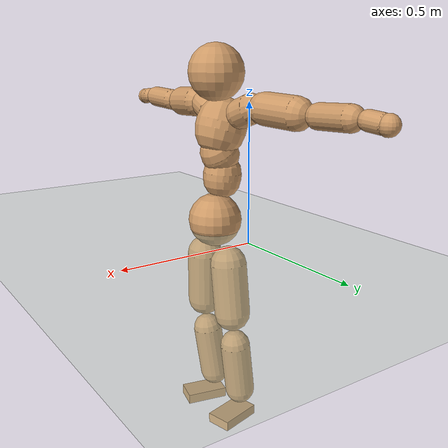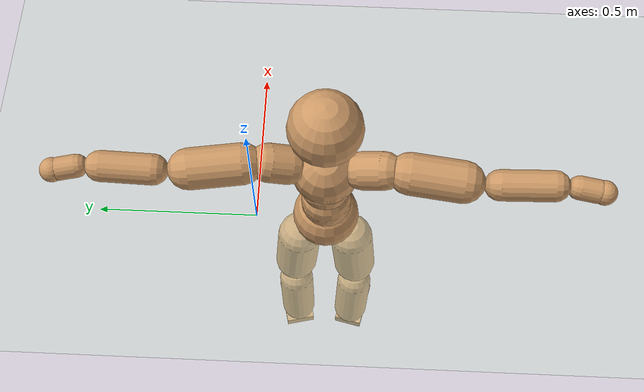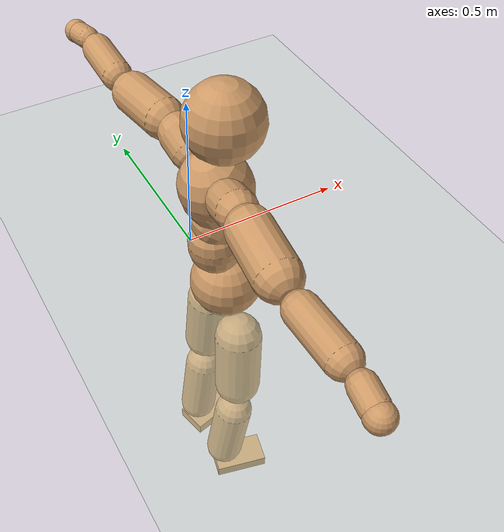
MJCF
<mujoco model="humanoid">
  <compiler coordinate="local"/>
  <default>
    <joint damping="0.0" armature="0.01" stiffness="0.0" limited="true"/>
    <geom conaffinity="1" condim="3" contype="7" margin="0.001" rgba="0.8 0.6 .4 1"/>
  </default>
  <asset>
    <texture type="skybox" builtin="gradient" rgb1=".4 .5 .6" rgb2="0 0 0" width="100" height="100"/>
    <texture builtin="flat" height="1278" mark="cross" markrgb="1 1 1" name="texgeom" random="0.01" rgb1="0.8 0.6 0.4" rgb2="0.8 0.6 0.4" type="cube" width="127"/>
    <texture builtin="checker" height="100" name="texplane" rgb1="0 0 0" rgb2="0.8 0.8 0.8" type="2d" width="100"/>
    <material name="MatPlane" reflectance="0.5" shininess="1" specular="1" texrepeat="60 60" texture="texplane"/>
    <material name="geom" texture="texgeom" texuniform="true"/>
  </asset>
  <worldbody>
    <light cutoff="100" diffuse="1 1 1" dir="-0 0 -1.3" directional="true" exponent="1" pos="0 0 1.3" specular=".1 .1 .1"/>
    <geom conaffinity="1" condim="3" name="floor" pos="0 0 0" rgba="0.8 0.9 0.8 1" size="100 100 .2" type="plane" material="MatPlane"/>
    <body name="Pelvis" pos="0.0003 -0.2207 0.0397">
      <freejoint name="Pelvis"/>
      <geom type="sphere" contype="1" conaffinity="1" density="500" size="0.1030" pos="0.0000 0.0000 0.0000" name="Pelvis"/>
      <body name="L_Hip" pos="-0.0016 0.0805 -0.0906">
        <joint name="L_Hip_x" type="hinge" pos="0 0 0" axis="1 0 0" stiffness="800" damping="80" armature="0.02" range="-180.0000 180.0000"/>
        <joint name="L_Hip_y" type="hinge" pos="0 0 0" axis="0 1 0" stiffness="800" damping="80" armature="0.02" range="-180.0000 180.0000"/>
        <joint name="L_Hip_z" type="hinge" pos="0 0 0" axis="0 0 1" stiffness="800" damping="80" armature="0.02" range="-180.0000 180.0000"/>
        <geom type="capsule" contype="1" conaffinity="1" density="500" fromto="-0.0024 0.0048 -0.0683 -0.0095 0.0194 -0.2732" size="0.0698" name="L_Hip"/>
        <body name="L_Knee" pos="-0.0119 0.0242 -0.3415">
          <joint name="L_Knee_x" type="hinge" pos="0 0 0" axis="1 0 0" stiffness="800" damping="80" armature="0.02" range="-180.0000 180.0000"/>
          <joint name="L_Knee_y" type="hinge" pos="0 0 0" axis="0 1 0" stiffness="800" damping="80" armature="0.02" range="-180.0000 180.0000"/>
          <joint name="L_Knee_z" type="hinge" pos="0 0 0" axis="0 0 1" stiffness="800" damping="80" armature="0.02" range="-180.0000 180.0000"/>
          <geom type="capsule" contype="1" conaffinity="1" density="500" fromto="-0.0093 -0.0020 -0.0713 -0.0374 -0.0080 -0.2853" size="0.0587" name="L_Knee"/>
          <body name="L_Ankle" pos="-0.0467 -0.0099 -0.3567">
            <joint name="L_Ankle_x" type="hinge" pos="0 0 0" axis="1 0 0" stiffness="800" damping="80" armature="0.02" range="-180.0000 180.0000"/>
            <joint name="L_Ankle_y" type="hinge" pos="0 0 0" axis="0 1 0" stiffness="800" damping="80" armature="0.02" range="-180.0000 180.0000"/>
            <joint name="L_Ankle_z" type="hinge" pos="0 0 0" axis="0 0 1" stiffness="800" damping="80" armature="0.02" range="-180.0000 180.0000"/>
            <geom type="box" contype="1" conaffinity="1" density="500" pos="0.0568 0.0136 -0.0263" size="0.0842 0.0505 0.0195" quat="0.9931 0.0000 0.0000 0.1175" name="L_Ankle"/>
            <body name="L_Toe" pos="0.1136 0.0273 -0.0527">
              <joint name="L_Toe_x" type="hinge" pos="0 0 0" axis="1 0 0" stiffness="500" damping="50" armature="0.02" range="-180.0000 180.0000"/>
              <joint name="L_Toe_y" type="hinge" pos="0 0 0" axis="0 1 0" stiffness="500" damping="50" armature="0.02" range="-180.0000 180.0000"/>
              <joint name="L_Toe_z" type="hinge" pos="0 0 0" axis="0 0 1" stiffness="500" damping="50" armature="0.02" range="-180.0000 180.0000"/>
              <geom type="box" contype="1" conaffinity="1" density="500" pos="0.0000 0.0000 0.0269" size="0.001 0.0025 0.001" quat="0.9923 0.0000 0.0000 0.1236" name="L_Toe"/>
            </body>
          </body>
        </body>
      </body>
      <body name="R_Hip" pos="0 -0.078 -0.0899">
        <joint name="R_Hip_x" type="hinge" pos="0 0 0" axis="1 0 0" stiffness="800" damping="80" armature="0.02" range="-180.0000 180.0000"/>
        <joint name="R_Hip_y" type="hinge" pos="0 0 0" axis="0 1 0" stiffness="800" damping="80" armature="0.02" range="-180.0000 180.0000"/>
        <joint name="R_Hip_z" type="hinge" pos="0 0 0" axis="0 0 1" stiffness="800" damping="80" armature="0.02" range="-180.0000 180.0000"/>
        <geom type="capsule" contype="1" conaffinity="1" density="500" fromto="-0.0029 -0.0059 -0.0694 -0.0116 -0.0235 -0.2775" size="0.0692" name="R_Hip"/>
        <body name="R_Knee" pos="-0.0144 -0.0294 -0.3468">
          <joint name="R_Knee_x" type="hinge" pos="0 0 0" axis="1 0 0" stiffness="800" damping="80" armature="0.02" range="-180.0000 180.0000"/>
          <joint name="R_Knee_y" type="hinge" pos="0 0 0" axis="0 1 0" stiffness="800" damping="80" armature="0.02" range="-180.0000 180.0000"/>
          <joint name="R_Knee_z" type="hinge" pos="0 0 0" axis="0 0 1" stiffness="800" damping="80" armature="0.02" range="-180.0000 180.0000"/>
          <geom type="capsule" contype="1" conaffinity="1" density="500" fromto="-0.0094 0.0023 -0.0715 -0.0375 0.0091 -0.2859" size="0.0587" name="R_Knee"/>
          <body name="R_Ankle" pos="-0.0468 0.0113 -0.3574">
            <joint name="R_Ankle_x" type="hinge" pos="0 0 0" axis="1 0 0" stiffness="800" damping="80" armature="0.02" range="-180.0000 180.0000"/>
            <joint name="R_Ankle_y" type="hinge" pos="0 0 0" axis="0 1 0" stiffness="800" damping="80" armature="0.02" range="-180.0000 180.0000"/>
            <joint name="R_Ankle_z" type="hinge" pos="0 0 0" axis="0 0 1" stiffness="800" damping="80" armature="0.02" range="-180.0000 180.0000"/>
            <geom type="box" contype="1" conaffinity="1" density="500" pos="0.0588 -0.0136 -0.0221" size="0.0833 0.0485 0.0201" quat="0.9935 0.0000 0.0000 -0.1135" name="R_Ankle"/>
            <body name="R_Toe" pos="0.1177 -0.0272 -0.0442">
              <joint name="R_Toe_x" type="hinge" pos="0 0 0" axis="1 0 0" stiffness="500" damping="50" armature="0.02" range="-180.0000 180.0000"/>
              <joint name="R_Toe_y" type="hinge" pos="0 0 0" axis="0 1 0" stiffness="500" damping="50" armature="0.02" range="-180.0000 180.0000"/>
              <joint name="R_Toe_z" type="hinge" pos="0 0 0" axis="0 0 1" stiffness="500" damping="50" armature="0.02" range="-180.0000 180.0000"/>
              <geom type="box" contype="1" conaffinity="1" density="500" pos="0.0000 0.0000 0.0243" size="0.0009 0.0024 0.0011" quat="0.9946 0.0000 0.0000 -0.1038" name="R_Toe"/>
            </body>
          </body>
        </body>
      </body>
      <body name="Torso" pos="-0.0319 -0.0029 0.1052">
        <joint name="Torso_x" type="hinge" pos="0 0 0" axis="1 0 0" stiffness="1000" damping="100" armature="0.02" range="-180.0000 180.0000"/>
        <joint name="Torso_y" type="hinge" pos="0 0 0" axis="0 1 0" stiffness="1000" damping="100" armature="0.02" range="-180.0000 180.0000"/>
        <joint name="Torso_z" type="hinge" pos="0 0 0" axis="0 0 1" stiffness="1000" damping="100" armature="0.02" range="-180.0000 180.0000"/>
        <geom type="capsule" contype="1" conaffinity="1" density="500" fromto="-0.0046 0.0020 0.0748 -0.0031 0.0013 0.0499" size="0.073656" name="Torso"/>
        <body name="Spine" pos="-0.0077 0.0034 0.1247">
          <joint name="Spine_x" type="hinge" pos="0 0 0" axis="1 0 0" stiffness="1000" damping="100" armature="0.02" range="-180.0000 180.0000"/>
          <joint name="Spine_y" type="hinge" pos="0 0 0" axis="0 1 0" stiffness="1000" damping="100" armature="0.02" range="-180.0000 180.0000"/>
          <joint name="Spine_z" type="hinge" pos="0 0 0" axis="0 0 1" stiffness="1000" damping="100" armature="0.02" range="-180.0000 180.0000"/>
          <geom type="capsule" contype="1" conaffinity="1" density="500" fromto="0.0195 0.0010 0.0299 0.0130 0.0007 0.0199" size="0.073191" name="Spine"/>
          <body name="Chest" pos="0.0326 0.0017 0.0498">
            <joint name="Chest_x" type="hinge" pos="0 0 0" axis="1 0 0" stiffness="1000" damping="100" armature="0.02" range="-180.0000 180.0000"/>
            <joint name="Chest_y" type="hinge" pos="0 0 0" axis="0 1 0" stiffness="1000" damping="100" armature="0.02" range="-180.0000 180.0000"/>
            <joint name="Chest_z" type="hinge" pos="0 0 0" axis="0 0 1" stiffness="1000" damping="100" armature="0.02" range="-180.0000 180.0000"/>
            <geom type="capsule" contype="1" conaffinity="1" density="500" fromto="-0.0276 -0.0001 0.0908 -0.0184 -0.0001 0.0605" size="0.096441" name="Chest"/>
            <body name="Neck" pos="-0.0532 0.0006 0.2123">
              <joint name="Neck_x" type="hinge" pos="0 0 0" axis="1 0 0" stiffness="500" damping="50" armature="0.02" range="-180.0000 180.0000"/>
              <joint name="Neck_y" type="hinge" pos="0 0 0" axis="0 1 0" stiffness="500" damping="50" armature="0.02" range="-180.0000 180.0000"/>
              <joint name="Neck_z" type="hinge" pos="0 0 0" axis="0 0 1" stiffness="500" damping="50" armature="0.02" range="-180.0000 180.0000"/>
              <geom type="capsule" contype="1" conaffinity="1" density="500" fromto="0.0101 0.0002 0.0117 0.0405 0.0009 0.0469" size="0.040362" name="Neck"/>
              <body name="Head" pos="0.0507 0.0012 0.0586">
                <joint name="Head_x" type="hinge" pos="0 0 0" axis="1 0 0" stiffness="500" damping="50" armature="0.02" range="-180.0000 180.0000"/>
                <joint name="Head_y" type="hinge" pos="0 0 0" axis="0 1 0" stiffness="500" damping="50" armature="0.02" range="-180.0000 180.0000"/>
                <joint name="Head_z" type="hinge" pos="0 0 0" axis="0 0 1" stiffness="500" damping="50" armature="0.02" range="-180.0000 180.0000"/>
                <geom type="sphere" contype="1" conaffinity="1" density="500" size="0.1042" pos="0.0000 0.0000 0.0000" name="Head"/>
              </body>
            </body>
            <body name="L_Thorax" pos="-0.0388 0.0816 0.1224">
              <joint name="L_Thorax_x" type="hinge" pos="0 0 0" axis="1 0 0" stiffness="500" damping="50" armature="0.02" range="-180.0000 180.0000"/>
              <joint name="L_Thorax_y" type="hinge" pos="0 0 0" axis="0 1 0" stiffness="500" damping="50" armature="0.02" range="-180.0000 180.0000"/>
              <joint name="L_Thorax_z" type="hinge" pos="0 0 0" axis="0 0 1" stiffness="500" damping="50" armature="0.02" range="-180.0000 180.0000"/>
              <geom type="capsule" contype="1" conaffinity="1" density="500" fromto="-0.0021 0.0185 0.0068 -0.0084 0.0741 0.0273" size="0.0548" name="L_Thorax"/>
              <body name="L_Shoulder" pos="-0.0106 0.0926 0.0341">
                <joint name="L_Shoulder_x" type="hinge" pos="0 0 0" axis="1 0 0" stiffness="500" damping="50" armature="0.02" range="-720.0000 720.0000"/>
                <joint name="L_Shoulder_y" type="hinge" pos="0 0 0" axis="0 1 0" stiffness="500" damping="50" armature="0.02" range="-720.0000 720.0000"/>
                <joint name="L_Shoulder_z" type="hinge" pos="0 0 0" axis="0 0 1" stiffness="500" damping="50" armature="0.02" range="-720.0000 720.0000"/>
                <geom type="capsule" contype="1" conaffinity="1" density="500" fromto="-0.0064 0.0489 -0.0023 -0.0255 0.1957 -0.0091" size="0.0581" name="L_Shoulder"/>
                <body name="L_Elbow" pos="-0.0318 0.2446 -0.0114">
                  <joint name="L_Elbow_x" type="hinge" pos="0 0 0" axis="1 0 0" stiffness="500" damping="50" armature="0.02" range="-720.0000 720.0000"/>
                  <joint name="L_Elbow_y" type="hinge" pos="0 0 0" axis="0 1 0" stiffness="500" damping="50" armature="0.02" range="-720.0000 720.0000"/>
                  <joint name="L_Elbow_z" type="hinge" pos="0 0 0" axis="0 0 1" stiffness="500" damping="50" armature="0.02" range="-720.0000 720.0000"/>
                  <geom type="capsule" contype="1" conaffinity="1" density="500" fromto="0.0006 0.0474 0.0018 0.0024 0.1896 0.0072" size="0.0436" name="L_Elbow"/>
                  <body name="L_Wrist" pos="0.0031 0.237 0.009">
                    <joint name="L_Wrist_x" type="hinge" pos="0 0 0" axis="1 0 0" stiffness="300" damping="30" armature="0.02" range="-180.0000 180.0000"/>
                    <joint name="L_Wrist_y" type="hinge" pos="0 0 0" axis="0 1 0" stiffness="300" damping="30" armature="0.02" range="-180.0000 180.0000"/>
                    <joint name="L_Wrist_z" type="hinge" pos="0 0 0" axis="0 0 1" stiffness="300" damping="30" armature="0.02" range="-180.0000 180.0000"/>
                    <geom type="capsule" contype="1" conaffinity="1" density="500" fromto="-0.0027 0.0169 -0.0020 -0.0110 0.0677 -0.0081" size="0.0325" name="L_Wrist"/>
                    <body name="L_Hand" pos="-0.0137 0.0847 -0.0102">
                      <joint name="L_Hand_x" type="hinge" pos="0 0 0" axis="1 0 0" stiffness="300" damping="30" armature="0.02" range="-180.0000 180.0000"/>
                      <joint name="L_Hand_y" type="hinge" pos="0 0 0" axis="0 1 0" stiffness="300" damping="30" armature="0.02" range="-180.0000 180.0000"/>
                      <joint name="L_Hand_z" type="hinge" pos="0 0 0" axis="0 0 1" stiffness="300" damping="30" armature="0.02" range="-180.0000 180.0000"/>
                      <geom type="sphere" contype="1" conaffinity="1" density="500" size="0.0343" pos="0.0000 0.0000 0.0000" name="L_Hand"/>
                    </body>
                  </body>
                </body>
              </body>
            </body>
            <body name="R_Thorax" pos="-0.0458 -0.0826 0.1194">
              <joint name="R_Thorax_x" type="hinge" pos="0 0 0" axis="1 0 0" stiffness="500" damping="50" armature="0.02" range="-180.0000 180.0000"/>
              <joint name="R_Thorax_y" type="hinge" pos="0 0 0" axis="0 1 0" stiffness="500" damping="50" armature="0.02" range="-180.0000 180.0000"/>
              <joint name="R_Thorax_z" type="hinge" pos="0 0 0" axis="0 0 1" stiffness="500" damping="50" armature="0.02" range="-180.0000 180.0000"/>
              <geom type="capsule" contype="1" conaffinity="1" density="500" fromto="-0.0027 -0.0196 0.0067 -0.0108 -0.0785 0.0269" size="0.0538" name="R_Thorax"/>
              <body name="R_Shoulder" pos="-0.0135 -0.0981 0.0336">
                <joint name="R_Shoulder_x" type="hinge" pos="0 0 0" axis="1 0 0" stiffness="500" damping="50" armature="0.02" range="-720.0000 720.0000"/>
                <joint name="R_Shoulder_y" type="hinge" pos="0 0 0" axis="0 1 0" stiffness="500" damping="50" armature="0.02" range="-720.0000 720.0000"/>
                <joint name="R_Shoulder_z" type="hinge" pos="0 0 0" axis="0 0 1" stiffness="500" damping="50" armature="0.02" range="-720.0000 720.0000"/>
                <geom type="capsule" contype="1" conaffinity="1" density="500" fromto="-0.0051 -0.0489 -0.0024 -0.0202 -0.1957 -0.0097" size="0.059" name="R_Shoulder"/>
                <body name="R_Elbow" pos="-0.0253 -0.2446 -0.0121">
                  <joint name="R_Elbow_x" type="hinge" pos="0 0 0" axis="1 0 0" stiffness="500" damping="50" armature="0.02" range="-720.0000 720.0000"/>
                  <joint name="R_Elbow_y" type="hinge" pos="0 0 0" axis="0 1 0" stiffness="500" damping="50" armature="0.02" range="-720.0000 720.0000"/>
                  <joint name="R_Elbow_z" type="hinge" pos="0 0 0" axis="0 0 1" stiffness="500" damping="50" armature="0.02" range="-720.0000 720.0000"/>
                  <geom type="capsule" contype="1" conaffinity="1" density="500" fromto="0.0002 -0.0485 0.0019 0.0009 -0.1940 0.0078" size="0.0436" name="R_Elbow"/>
                  <body name="R_Wrist" pos="0.0011 -0.2425 0.0097">
                    <joint name="R_Wrist_x" type="hinge" pos="0 0 0" axis="1 0 0" stiffness="300" damping="30" armature="0.02" range="-180.0000 180.0000"/>
                    <joint name="R_Wrist_y" type="hinge" pos="0 0 0" axis="0 1 0" stiffness="300" damping="30" armature="0.02" range="-180.0000 180.0000"/>
                    <joint name="R_Wrist_z" type="hinge" pos="0 0 0" axis="0 0 1" stiffness="300" damping="30" armature="0.02" range="-180.0000 180.0000"/>
                    <geom type="capsule" contype="1" conaffinity="1" density="500" fromto="-0.0022 -0.0171 -0.0015 -0.0090 -0.0682 -0.0062" size="0.0332" name="R_Wrist"/>
                    <body name="R_Hand" pos="-0.0112 -0.0853 -0.0077">
                      <joint name="R_Hand_x" type="hinge" pos="0 0 0" axis="1 0 0" stiffness="300" damping="30" armature="0.02" range="-180.0000 180.0000"/>
                      <joint name="R_Hand_y" type="hinge" pos="0 0 0" axis="0 1 0" stiffness="300" damping="30" armature="0.02" range="-180.0000 180.0000"/>
                      <joint name="R_Hand_z" type="hinge" pos="0 0 0" axis="0 0 1" stiffness="300" damping="30" armature="0.02" range="-180.0000 180.0000"/>
                      <geom type="sphere" contype="1" conaffinity="1" density="500" size="0.0345" pos="0.0000 0.0000 0.0000" name="R_Hand"/>
                    </body>
                  </body>
                </body>
              </body>
            </body>
          </body>
        </body>
      </body>
    </body>
  </worldbody>
  <actuator>
    <motor name="L_Hip_x" joint="L_Hip_x" gear="500"/>
    <motor name="L_Hip_y" joint="L_Hip_y" gear="500"/>
    <motor name="L_Hip_z" joint="L_Hip_z" gear="500"/>
    <motor name="L_Knee_x" joint="L_Knee_x" gear="500"/>
    <motor name="L_Knee_y" joint="L_Knee_y" gear="500"/>
    <motor name="L_Knee_z" joint="L_Knee_z" gear="500"/>
    <motor name="L_Ankle_x" joint="L_Ankle_x" gear="500"/>
    <motor name="L_Ankle_y" joint="L_Ankle_y" gear="500"/>
    <motor name="L_Ankle_z" joint="L_Ankle_z" gear="500"/>
    <motor name="L_Toe_x" joint="L_Toe_x" gear="500"/>
    <motor name="L_Toe_y" joint="L_Toe_y" gear="500"/>
    <motor name="L_Toe_z" joint="L_Toe_z" gear="500"/>
    <motor name="R_Hip_x" joint="R_Hip_x" gear="500"/>
    <motor name="R_Hip_y" joint="R_Hip_y" gear="500"/>
    <motor name="R_Hip_z" joint="R_Hip_z" gear="500"/>
    <motor name="R_Knee_x" joint="R_Knee_x" gear="500"/>
    <motor name="R_Knee_y" joint="R_Knee_y" gear="500"/>
    <motor name="R_Knee_z" joint="R_Knee_z" gear="500"/>
    <motor name="R_Ankle_x" joint="R_Ankle_x" gear="500"/>
    <motor name="R_Ankle_y" joint="R_Ankle_y" gear="500"/>
    <motor name="R_Ankle_z" joint="R_Ankle_z" gear="500"/>
    <motor name="R_Toe_x" joint="R_Toe_x" gear="500"/>
    <motor name="R_Toe_y" joint="R_Toe_y" gear="500"/>
    <motor name="R_Toe_z" joint="R_Toe_z" gear="500"/>
    <motor name="Torso_x" joint="Torso_x" gear="500"/>
    <motor name="Torso_y" joint="Torso_y" gear="500"/>
    <motor name="Torso_z" joint="Torso_z" gear="500"/>
    <motor name="Spine_x" joint="Spine_x" gear="500"/>
    <motor name="Spine_y" joint="Spine_y" gear="500"/>
    <motor name="Spine_z" joint="Spine_z" gear="500"/>
    <motor name="Chest_x" joint="Chest_x" gear="500"/>
    <motor name="Chest_y" joint="Chest_y" gear="500"/>
    <motor name="Chest_z" joint="Chest_z" gear="500"/>
    <motor name="Neck_x" joint="Neck_x" gear="500"/>
    <motor name="Neck_y" joint="Neck_y" gear="500"/>
    <motor name="Neck_z" joint="Neck_z" gear="500"/>
    <motor name="Head_x" joint="Head_x" gear="500"/>
    <motor name="Head_y" joint="Head_y" gear="500"/>
    <motor name="Head_z" joint="Head_z" gear="500"/>
    <motor name="L_Thorax_x" joint="L_Thorax_x" gear="500"/>
    <motor name="L_Thorax_y" joint="L_Thorax_y" gear="500"/>
    <motor name="L_Thorax_z" joint="L_Thorax_z" gear="500"/>
    <motor name="L_Shoulder_x" joint="L_Shoulder_x" gear="500"/>
    <motor name="L_Shoulder_y" joint="L_Shoulder_y" gear="500"/>
    <motor name="L_Shoulder_z" joint="L_Shoulder_z" gear="500"/>
    <motor name="L_Elbow_x" joint="L_Elbow_x" gear="500"/>
    <motor name="L_Elbow_y" joint="L_Elbow_y" gear="500"/>
    <motor name="L_Elbow_z" joint="L_Elbow_z" gear="500"/>
    <motor name="L_Wrist_x" joint="L_Wrist_x" gear="500"/>
    <motor name="L_Wrist_y" joint="L_Wrist_y" gear="500"/>
    <motor name="L_Wrist_z" joint="L_Wrist_z" gear="500"/>
    <motor name="L_Hand_x" joint="L_Hand_x" gear="500"/>
    <motor name="L_Hand_y" joint="L_Hand_y" gear="500"/>
    <motor name="L_Hand_z" joint="L_Hand_z" gear="500"/>
    <motor name="R_Thorax_x" joint="R_Thorax_x" gear="500"/>
    <motor name="R_Thorax_y" joint="R_Thorax_y" gear="500"/>
    <motor name="R_Thorax_z" joint="R_Thorax_z" gear="500"/>
    <motor name="R_Shoulder_x" joint="R_Shoulder_x" gear="500"/>
    <motor name="R_Shoulder_y" joint="R_Shoulder_y" gear="500"/>
    <motor name="R_Shoulder_z" joint="R_Shoulder_z" gear="500"/>
    <motor name="R_Elbow_x" joint="R_Elbow_x" gear="500"/>
    <motor name="R_Elbow_y" joint="R_Elbow_y" gear="500"/>
    <motor name="R_Elbow_z" joint="R_Elbow_z" gear="500"/>
    <motor name="R_Wrist_x" joint="R_Wrist_x" gear="500"/>
    <motor name="R_Wrist_y" joint="R_Wrist_y" gear="500"/>
    <motor name="R_Wrist_z" joint="R_Wrist_z" gear="500"/>
    <motor name="R_Hand_x" joint="R_Hand_x" gear="500"/>
    <motor name="R_Hand_y" joint="R_Hand_y" gear="500"/>
    <motor name="R_Hand_z" joint="R_Hand_z" gear="500"/>
  </actuator>
  <contact>
    <exclude body1="Torso" body2="Chest"/>
    <exclude body1="Head" body2="Chest"/>
    <exclude body1="R_Knee" body2="R_Toe"/>
    <exclude body1="R_Knee" body2="L_Ankle"/>
    <exclude body1="R_Knee" body2="L_Toe"/>
    <exclude body1="L_Knee" body2="L_Toe"/>
    <exclude body1="L_Knee" body2="R_Ankle"/>
    <exclude body1="L_Knee" body2="R_Toe"/>
    <exclude body1="L_Shoulder" body2="Chest"/>
    <exclude body1="R_Shoulder" body2="Chest"/>
  </contact>
  <sensor/>
  <size njmax="700" nconmax="700"/>
</mujoco>
